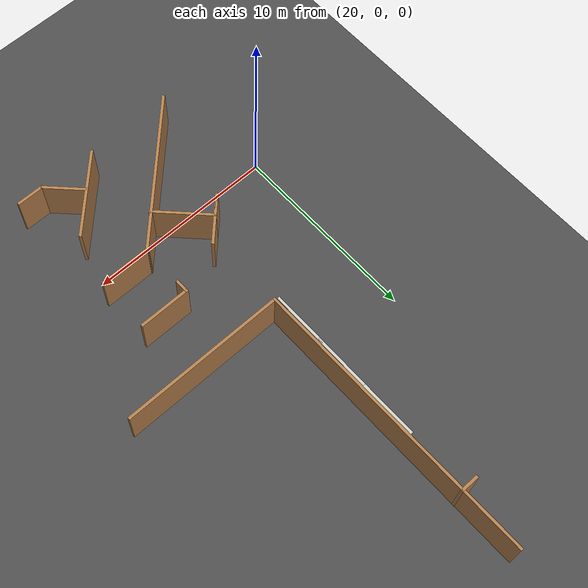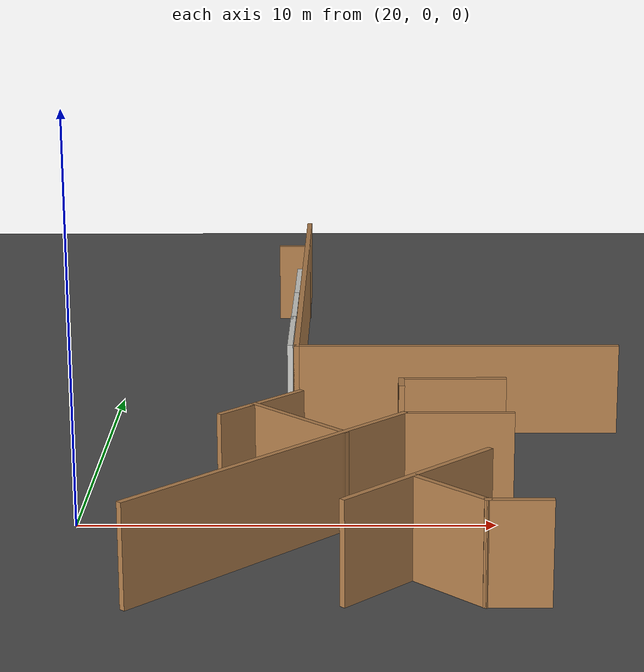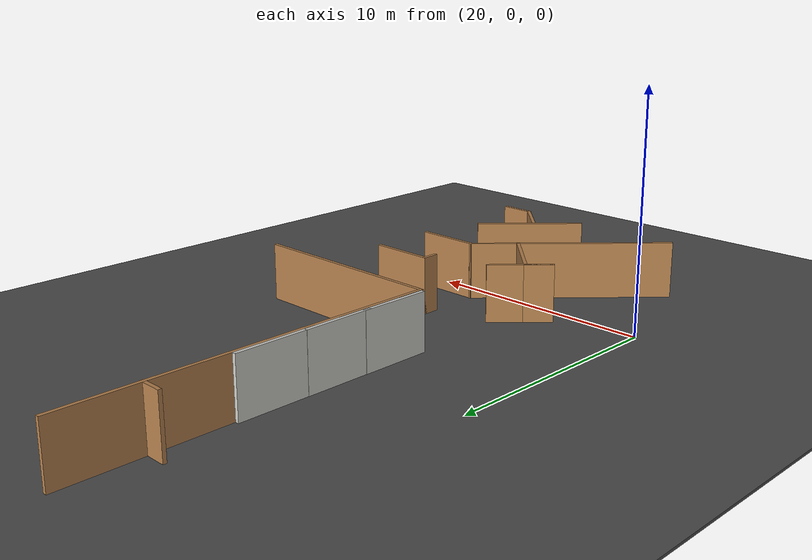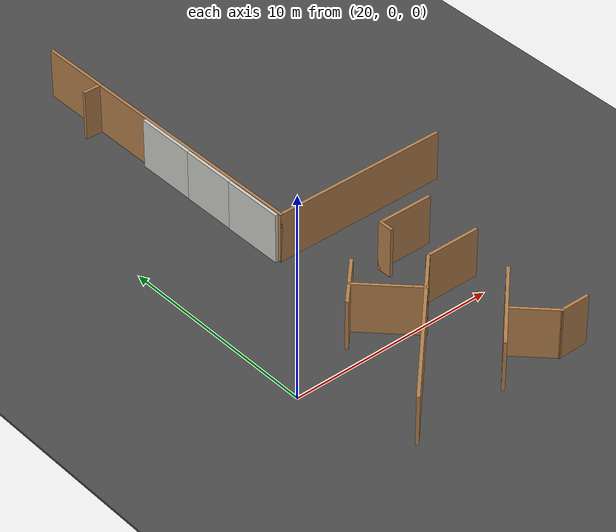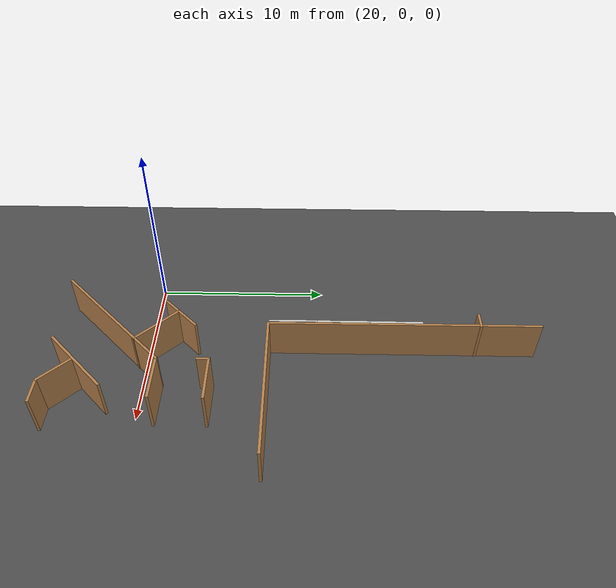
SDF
<sdf version="1.6">
 <world name="default">
  <model name="ground_plane">
   <static>1</static>
   <link name="link">
    <collision name="collision">
     <geometry><plane><normal>0 0 1</normal><size>100 100</size></plane></geometry>
     <surface><friction><ode><mu>100</mu><mu2>50</mu2></ode></friction></surface>
    </collision>
    <visual name="visual">
     <cast_shadows>0</cast_shadows>
     <geometry><plane><normal>0 0 1</normal><size>100 100</size></plane></geometry>
     <material>
      <script><uri>file://media/materials/scripts/gazebo.material</uri><name>Gazebo/Grey</name></script>
     </material>
    </visual>
   </link>
  </model>
  <model name="asphalt_plane">
   <static>1</static>
   <link name="link">
    <collision name="collision"><geometry><box><size>100 100 0.1</size></box></geometry></collision>
    <visual name="visual">
     <cast_shadows>0</cast_shadows>
     <geometry><box><size>100 100 0.1</size></box></geometry>
     <material>
      <script>
       <uri>model://asphalt_plane/materials/scripts</uri>
       <uri>model://asphalt_plane/materials/textures</uri>
       <name>vrc/asphalt</name>
      </script>
     </material>
    </visual>
   </link>
  </model>
  <model name="Hard_wall_wall_15">
   <pose>24.8729 8.48253 0 0 -0 0</pose>
   <link name="Wall_0">
    <collision name="Wall_0_Collision">
     <geometry><box><size>3 0.15 2.5</size></box></geometry>
     <pose>0 0 1.25 0 -0 0</pose>
    </collision>
    <visual name="Wall_0_Visual">
     <pose>0 0 1.25 0 -0 0</pose>
     <geometry><box><size>3 0.15 2.5</size></box></geometry>
     <material>
      <script><uri>file://media/materials/scripts/gazebo.material</uri><name>Gazebo/CeilingTiled</name></script>
      <ambient>1 1 1 1</ambient>
     </material>
     <meta><layer>0</layer></meta>
    </visual>
    <pose>0 0 0 0 -0 1.5708</pose>
   </link>
   <static>1</static>
  </model>
  <model name="Hard_wall_wall_19">
   <pose>24.8866 11.194 0 0 -0 0</pose>
   <link name="Wall_0">
    <collision name="Wall_0_Collision">
     <geometry><box><size>3 0.15 2.5</size></box></geometry>
     <pose>0 0 1.25 0 -0 0</pose>
    </collision>
    <visual name="Wall_0_Visual">
     <pose>0 0 1.25 0 -0 0</pose>
     <geometry><box><size>3 0.15 2.5</size></box></geometry>
     <material>
      <script><uri>file://media/materials/scripts/gazebo.material</uri><name>Gazebo/CeilingTiled</name></script>
      <ambient>1 1 1 1</ambient>
     </material>
     <meta><layer>0</layer></meta>
    </visual>
    <pose>0 0 0 0 -0 1.5708</pose>
   </link>
   <static>1</static>
  </model>
  <model name="Hard_wall_wall_20">
   <pose>24.896 14.1844 0 0 -0 0</pose>
   <link name="Wall_0">
    <collision name="Wall_0_Collision">
     <geometry><box><size>3 0.15 2.5</size></box></geometry>
     <pose>0 0 1.25 0 -0 0</pose>
    </collision>
    <visual name="Wall_0_Visual">
     <pose>0 0 1.25 0 -0 0</pose>
     <geometry><box><size>3 0.15 2.5</size></box></geometry>
     <material>
      <script><uri>file://media/materials/scripts/gazebo.material</uri><name>Gazebo/CeilingTiled</name></script>
      <ambient>1 1 1 1</ambient>
     </material>
     <meta><layer>0</layer></meta>
    </visual>
    <pose>0 0 0 0 -0 1.5708</pose>
   </link>
   <static>1</static>
  </model>
  <model name="Soft_wall_v1_1">
   <pose>-14.3408 -3.86286 0 0 -0 0</pose>
   <link name="Wall_18">
    <collision name="Wall_18_Collision">
     <geometry><box><size>15.5 0.15 2.5</size></box></geometry>
     <pose>0 0 1.25 0 -0 0</pose>
    </collision>
    <visual name="Wall_18_Visual">
     <pose>0 0 1.25 0 -0 0</pose>
     <geometry><box><size>15.5 0.15 2.5</size></box></geometry>
     <material>
      <script><uri>file://media/materials/scripts/gazebo.material</uri><name>Gazebo/Wood</name></script>
      <ambient>1 1 1 1</ambient>
     </material>
     <meta><layer>0</layer></meta>
    </visual>
    <pose>39.3855 18.4709 0 0 0 -1.5708</pose>
   </link>
   <link name="Wall_338">
    <collision name="Wall_338_Collision">
     <geometry><box><size>8.75 0.15 2.5</size></box></geometry>
     <pose>0 0 1.25 0 -0 0</pose>
    </collision>
    <visual name="Wall_338_Visual">
     <pose>0 0 1.25 0 -0 0</pose>
     <geometry><box><size>8.75 0.15 2.5</size></box></geometry>
     <material>
      <script><uri>file://media/materials/scripts/gazebo.material</uri><name>Gazebo/Wood</name></script>
      <ambient>1 1 1 1</ambient>
     </material>
     <meta><layer>0</layer></meta>
    </visual>
    <pose>43.6855 10.7959 0 0 -0 0</pose>
   </link>
   <link name="Wall_351">
    <collision name="Wall_351_Collision">
     <geometry><box><size>4.75 0.15 2.5</size></box></geometry>
     <pose>0 0 1.25 0 -0 0</pose>
    </collision>
    <visual name="Wall_351_Visual">
     <pose>0 0 1.25 0 -0 0</pose>
     <geometry><box><size>4.75 0.15 2.5</size></box></geometry>
     <material>
      <script><uri>file://media/materials/scripts/gazebo.material</uri><name>Gazebo/Wood</name></script>
      <ambient>1 1 1 1</ambient>
     </material>
     <meta><layer>0</layer></meta>
    </visual>
    <pose>42.3838 0.591594 0 0 0 -2.35619</pose>
   </link>
   <link name="Wall_361">
    <collision name="Wall_361_Collision">
     <geometry><box><size>2.25 0.15 2.5</size></box></geometry>
     <pose>0 0 1.25 0 -0 0</pose>
    </collision>
    <visual name="Wall_361_Visual">
     <pose>0 0 1.25 0 -0 0</pose>
     <geometry><box><size>2.25 0.15 2.5</size></box></geometry>
     <material>
      <script><uri>file://media/materials/scripts/gazebo.material</uri><name>Gazebo/Wood</name></script>
      <ambient>1 1 1 1</ambient>
     </material>
     <meta><layer>0</layer></meta>
    </visual>
    <pose>43.0424 -0.333442 0 0 0 -0.785398</pose>
   </link>
   <link name="Wall_362">
    <collision name="Wall_362_Collision">
     <geometry><box><size>1.5 0.15 2.5</size></box></geometry>
     <pose>0 0 1.25 0 -0 0</pose>
    </collision>
    <visual name="Wall_362_Visual">
     <pose>0 0 1.25 0 -0 0</pose>
     <geometry><box><size>1.5 0.15 2.5</size></box></geometry>
     <material>
      <script><uri>file://media/materials/scripts/gazebo.material</uri><name>Gazebo/Wood</name></script>
      <ambient>1 1 1 1</ambient>
     </material>
     <meta><layer>0</layer></meta>
    </visual>
    <pose>44.4599 -1.0759 0 0 -0 0</pose>
   </link>
   <link name="Wall_382">
    <collision name="Wall_382_Collision">
     <geometry><box><size>8.75 0.15 2.5</size></box></geometry>
     <pose>0 0 1.25 0 -0 0</pose>
    </collision>
    <visual name="Wall_382_Visual">
     <pose>0 0 1.25 0 -0 0</pose>
     <geometry><box><size>8.75 0.15 2.5</size></box></geometry>
     <material>
      <script><uri>file://media/materials/scripts/gazebo.material</uri><name>Gazebo/Wood</name></script>
      <ambient>1 1 1 1</ambient>
     </material>
     <meta><layer>0</layer></meta>
    </visual>
    <pose>39.1018 1.85636 0 0 -0 0.785398</pose>
   </link>
   <link name="Wall_383">
    <collision name="Wall_383_Collision">
     <geometry><box><size>2.75 0.15 2.5</size></box></geometry>
     <pose>0 0 1.25 0 -0 0</pose>
    </collision>
    <visual name="Wall_383_Visual">
     <pose>0 0 1.25 0 -0 0</pose>
     <geometry><box><size>2.75 0.15 2.5</size></box></geometry>
     <material>
      <script><uri>file://media/materials/scripts/gazebo.material</uri><name>Gazebo/Wood</name></script>
      <ambient>1 1 1 1</ambient>
     </material>
     <meta><layer>0</layer></meta>
    </visual>
    <pose>43.4424 4.89692 0 0 -0 0</pose>
   </link>
   <link name="Wall_385">
    <collision name="Wall_385_Collision">
     <geometry><box><size>2.75 0.15 2.5</size></box></geometry>
     <pose>0 0 1.25 0 -0 0</pose>
    </collision>
    <visual name="Wall_385_Visual">
     <pose>0 0 1.25 0 -0 0</pose>
     <geometry><box><size>2.75 0.15 2.5</size></box></geometry>
     <material>
      <script><uri>file://media/materials/scripts/gazebo.material</uri><name>Gazebo/Wood</name></script>
      <ambient>1 1 1 1</ambient>
     </material>
     <meta><layer>0</layer></meta>
    </visual>
    <pose>43.4424 7.74692 0 0 -0 3.14159</pose>
   </link>
   <link name="Wall_386">
    <collision name="Wall_386_Collision">
     <geometry><box><size>0.75 0.15 2.5</size></box></geometry>
     <pose>0 0 1.25 0 -0 0</pose>
    </collision>
    <visual name="Wall_386_Visual">
     <pose>0 0 1.25 0 -0 0</pose>
     <geometry><box><size>0.75 0.15 2.5</size></box></geometry>
     <material>
      <script><uri>file://media/materials/scripts/gazebo.material</uri><name>Gazebo/Wood</name></script>
      <ambient>1 1 1 1</ambient>
     </material>
     <meta><layer>0</layer></meta>
    </visual>
    <pose>42.1424 7.44692 0 0 0 -1.5708</pose>
   </link>
   <link name="Wall_431">
    <collision name="Wall_431_Collision">
     <geometry><box><size>3.25 0.15 2.5</size></box></geometry>
     <pose>0 0 1.25 0 -0 0</pose>
    </collision>
    <visual name="Wall_431_Visual">
     <pose>0 0 1.25 0 -0 0</pose>
     <geometry><box><size>3.25 0.15 2.5</size></box></geometry>
     <material>
      <script><uri>file://media/materials/scripts/gazebo.material</uri><name>Gazebo/Wood</name></script>
      <ambient>1 1 1 1</ambient>
     </material>
     <meta><layer>0</layer></meta>
    </visual>
    <pose>39.6341 4.52915 0 0 -0 2.35619</pose>
   </link>
   <link name="Wall_432">
    <collision name="Wall_432_Collision">
     <geometry><box><size>1.25 0.15 2.5</size></box></geometry>
     <pose>0 0 1.25 0 -0 0</pose>
    </collision>
    <visual name="Wall_432_Visual">
     <pose>0 0 1.25 0 -0 0</pose>
     <geometry><box><size>1.25 0.15 2.5</size></box></geometry>
     <material>
      <script><uri>file://media/materials/scripts/gazebo.material</uri><name>Gazebo/Wood</name></script>
      <ambient>1 1 1 1</ambient>
     </material>
     <meta><layer>0</layer></meta>
    </visual>
    <pose>38.1491 5.23626 0 0 0 -2.35619</pose>
   </link>
   <link name="Wall_433">
    <collision name="Wall_433_Collision">
     <geometry><box><size>2.75 0.15 2.5</size></box></geometry>
     <pose>0 0 1.25 0 -0 0</pose>
    </collision>
    <visual name="Wall_433_Visual">
     <pose>0 0 1.25 0 -0 0</pose>
     <geometry><box><size>2.75 0.15 2.5</size></box></geometry>
     <material>
      <script><uri>file://media/materials/scripts/gazebo.material</uri><name>Gazebo/Wood</name></script>
      <ambient>1 1 1 1</ambient>
     </material>
     <meta><layer>0</layer></meta>
    </visual>
    <pose>38.6795 5.76659 0 0 -0 0.785398</pose>
   </link>
   <link name="Wall_98">
    <collision name="Wall_98_Collision">
     <geometry><box><size>1 0.15 2.5</size></box></geometry>
     <pose>0 0 1.25 0 -0 0</pose>
    </collision>
    <visual name="Wall_98_Visual">
     <pose>0 0 1.25 0 -0 0</pose>
     <geometry><box><size>1 0.15 2.5</size></box></geometry>
     <material>
      <script><uri>file://media/materials/scripts/gazebo.material</uri><name>Gazebo/Wood</name></script>
      <ambient>1 1 1 1</ambient>
     </material>
     <meta><layer>0</layer></meta>
    </visual>
    <pose>38.9858 22.7844 0 0 -0 3.14159</pose>
   </link>
   <static>1</static>
  </model>
 </world>
</sdf>
